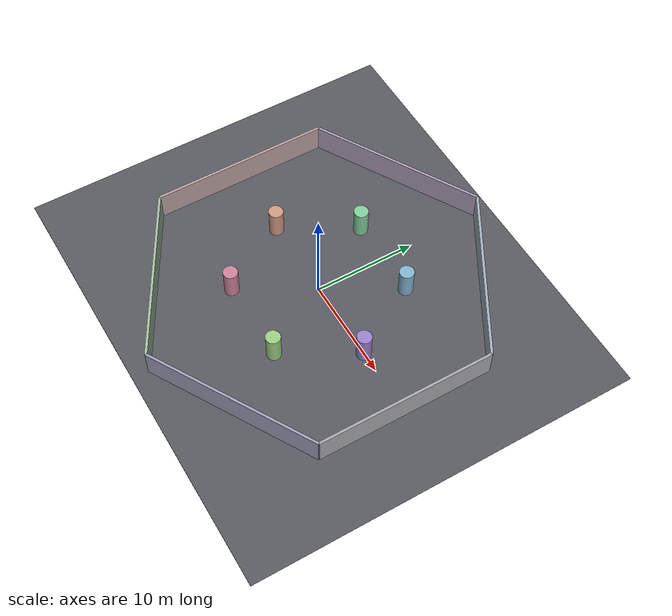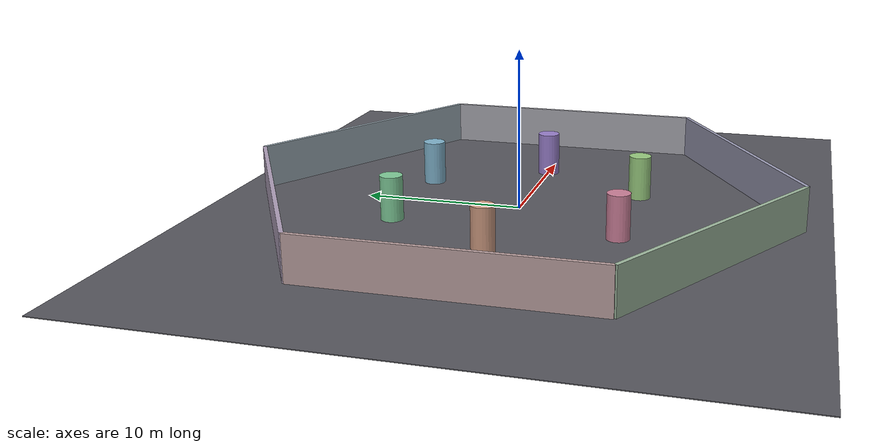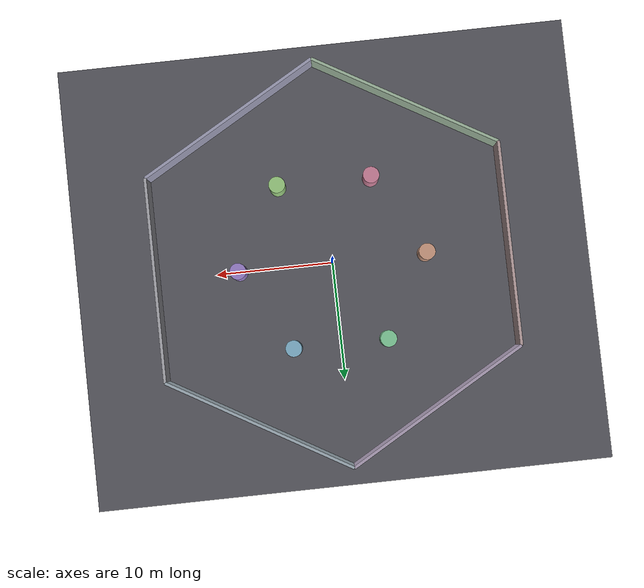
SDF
<?xml version="1.0"?>
<sdf version="1.7">
  <world name="gmr_world">
    <!-- Core systems -->
    <plugin filename="gz-sim-physics-system"           name="gz::sim::systems::Physics"/>
    <plugin filename="gz-sim-user-commands-system"     name="gz::sim::systems::UserCommands"/>
    <plugin filename="gz-sim-scene-broadcaster-system" name="gz::sim::systems::SceneBroadcaster"/>
    <plugin filename="gz-sim-sensors-system"           name="gz::sim::systems::Sensors">
      <render_engine>ogre2</render_engine>
    </plugin>

    <!-- Scene & lighting -->
    <scene>
      <ambient>0.55 0.55 0.58 1</ambient>
      <background>0.82 0.85 0.90 1</background>
      <shadows>true</shadows>
    </scene>

    <light name="sun" type="directional">
      <pose>0 0 60 0 0 0</pose>
      <diffuse>1 1 0.95 1</diffuse>
      <specular>0.3 0.3 0.3 1</specular>
      <direction>-0.35 0.20 -0.90</direction>
      <cast_shadows>true</cast_shadows>
    </light>

    <!-- Floor (unchanged: tight fit around hex) -->
    <model name="floor">
      <static>true</static>
      <pose>0 0 0 0 0 0</pose>
      <link name="link">
        <collision name="c"><geometry><box><size>44 38 0.05</size></box></geometry></collision>
        <visual name="v">
          <geometry><box><size>44 38 0.05</size></box></geometry>
          <material>
            <ambient>0.30 0.30 0.33 1</ambient>
            <diffuse>0.34 0.34 0.37 1</diffuse>
          </material>
        </visual>
      </link>
    </model>

    <!-- ============== Hexagon walls (shrunk to apothem a=15 m) ============== -->
    <!-- side length = 2a/√3 ≈ 17.3205 ; NE/NW/SE/SW at (±a/2, ±a√3/2) -->

    <!-- +X (East) -->
    <model name="hex_east">
      <static>true</static>
      <pose>15 0 1.4 0 0 1.5708</pose>
      <link name="link">
        <collision name="c"><geometry><box><size>17.3205 0.25 2.8</size></box></geometry></collision>
        <visual name="v"><geometry><box><size>17.3205 0.25 2.8</size></box></geometry>
          <material><diffuse>0.65 0.65 0.68 1</diffuse><double_sided>true</double_sided></material>
        </visual>
      </link>
    </model>

    <!-- +X +Y (NE) -->
    <model name="hex_ne">
      <static>true</static>
      <pose>7.5 12.9904 1.4 0 0 2.61799</pose>
      <link name="link">
        <collision name="c"><geometry><box><size>17.3205 0.25 2.8</size></box></geometry></collision>
        <visual name="v"><geometry><box><size>17.3205 0.25 2.8</size></box></geometry>
          <material><diffuse>0.62 0.68 0.72 1</diffuse><double_sided>true</double_sided></material>
        </visual>
      </link>
    </model>

    <!-- -X +Y (NW) -->
    <model name="hex_nw">
      <static>true</static>
      <pose>-7.5 12.9904 1.4 0 0 3.66519</pose>
      <link name="link">
        <collision name="c"><geometry><box><size>17.3205 0.25 2.8</size></box></geometry></collision>
        <visual name="v"><geometry><box><size>17.3205 0.25 2.8</size></box></geometry>
          <material><diffuse>0.68 0.62 0.72 1</diffuse><double_sided>true</double_sided></material>
        </visual>
      </link>
    </model>

    <!-- -X (West) -->
    <model name="hex_west">
      <static>true</static>
      <pose>-15 0 1.4 0 0 4.71239</pose>
      <link name="link">
        <collision name="c"><geometry><box><size>17.3205 0.25 2.8</size></box></geometry></collision>
        <visual name="v"><geometry><box><size>17.3205 0.25 2.8</size></box></geometry>
          <material><diffuse>0.72 0.62 0.62 1</diffuse><double_sided>true</double_sided></material>
        </visual>
      </link>
    </model>

    <!-- -X -Y (SW) -->
    <model name="hex_sw">
      <static>true</static>
      <pose>-7.5 -12.9904 1.4 0 0 5.75959</pose>
      <link name="link">
        <collision name="c"><geometry><box><size>17.3205 0.25 2.8</size></box></geometry></collision>
        <visual name="v"><geometry><box><size>17.3205 0.25 2.8</size></box></geometry>
          <material><diffuse>0.62 0.72 0.62 1</diffuse><double_sided>true</double_sided></material>
        </visual>
      </link>
    </model>

    <!-- +X -Y (SE) -->
    <model name="hex_se">
      <static>true</static>
      <pose>7.5 -12.9904 1.4 0 0 0.523599</pose>
      <link name="link">
        <collision name="c"><geometry><box><size>17.3205 0.25 2.8</size></box></geometry></collision>
        <visual name="v"><geometry><box><size>17.3205 0.25 2.8</size></box></geometry>
          <material><diffuse>0.62 0.62 0.72 1</diffuse><double_sided>true</double_sided></material>
        </visual>
      </link>
    </model>

    <!-- ============== Pillars kept (inner 6) and camera unchanged ============== -->
    <model name="pillar_in_0"><static>true</static><pose>8 0 1.4 0 0 0</pose>
      <link name="link"><collision name="c"><geometry><cylinder><radius>0.7</radius><length>2.8</length></cylinder></geometry></collision>
        <visual name="v"><geometry><cylinder><radius>0.7</radius><length>2.8</length></cylinder></geometry>
          <material><diffuse>0.60 0.50 0.80 1</diffuse></material></visual>
      </link>
    </model>
    <model name="pillar_in_60"><static>true</static><pose>4 6.928 1.4 0 0 0</pose>
      <link name="link"><collision name="c"><geometry><cylinder><radius>0.7</radius><length>2.8</length></cylinder></geometry></collision>
        <visual name="v"><geometry><cylinder><radius>0.7</radius><length>2.8</length></cylinder></geometry>
          <material><diffuse>0.50 0.70 0.80 1</diffuse></material></visual>
      </link>
    </model>
    <model name="pillar_in_120"><static>true</static><pose>-4 6.928 1.4 0 0 0</pose>
      <link name="link"><collision name="c"><geometry><cylinder><radius>0.7</radius><length>2.8</length></cylinder></geometry></collision>
        <visual name="v"><geometry><cylinder><radius>0.7</radius><length>2.8</length></cylinder></geometry>
          <material><diffuse>0.50 0.80 0.60 1</diffuse></material></visual>
      </link>
    </model>
    <model name="pillar_in_180"><static>true</static><pose>-8 0 1.4 0 0 0</pose>
      <link name="link"><collision name="c"><geometry><cylinder><radius>0.7</radius><length>2.8</length></cylinder></geometry></collision>
        <visual name="v"><geometry><cylinder><radius>0.7</radius><length>2.8</length></cylinder></geometry>
          <material><diffuse>0.80 0.60 0.50 1</diffuse></material></visual>
      </link>
    </model>
    <model name="pillar_in_240"><static>true</static><pose>-4 -6.928 1.4 0 0 0</pose>
      <link name="link"><collision name="c"><geometry><cylinder><radius>0.7</radius><length>2.8</length></cylinder></geometry></collision>
        <visual name="v"><geometry><cylinder><radius>0.7</radius><length>2.8</length></cylinder></geometry>
          <material><diffuse>0.80 0.50 0.60 1</diffuse></material></visual>
      </link>
    </model>
    <model name="pillar_in_300"><static>true</static><pose>4 -6.928 1.4 0 0 0</pose>
      <link name="link"><collision name="c"><geometry><cylinder><radius>0.7</radius><length>2.8</length></cylinder></geometry></collision>
        <visual name="v"><geometry><cylinder><radius>0.7</radius><length>2.8</length></cylinder></geometry>
          <material><diffuse>0.60 0.80 0.50 1</diffuse></material></visual>
      </link>
    </model>

    <gui>
      <camera name="user_camera">
        <pose>0 -40 28 0.9 0 0</pose>
      </camera>
    </gui>
  </world>
</sdf>
